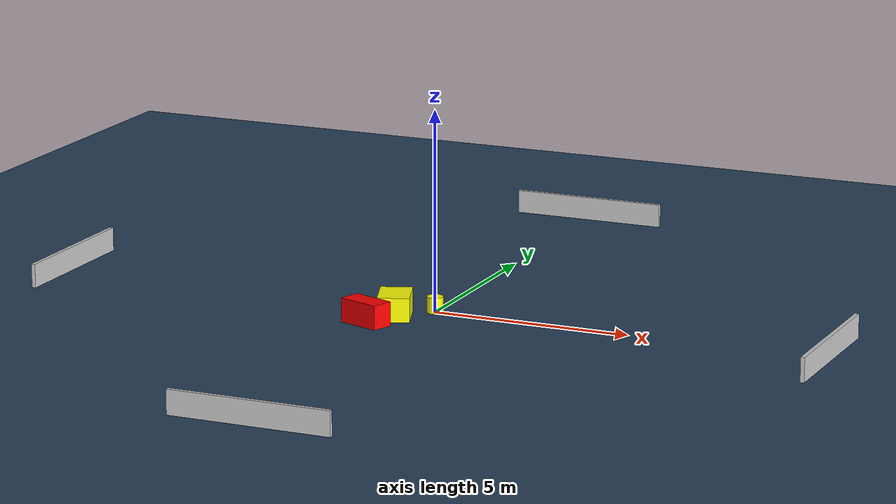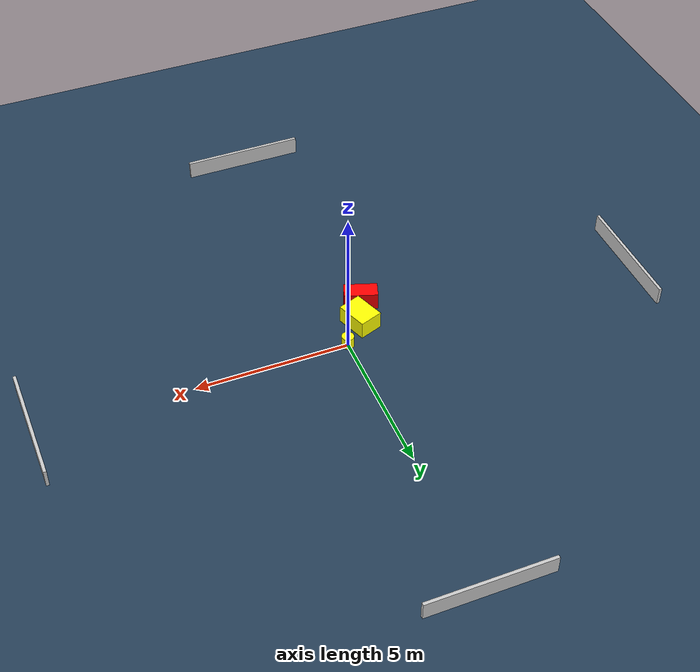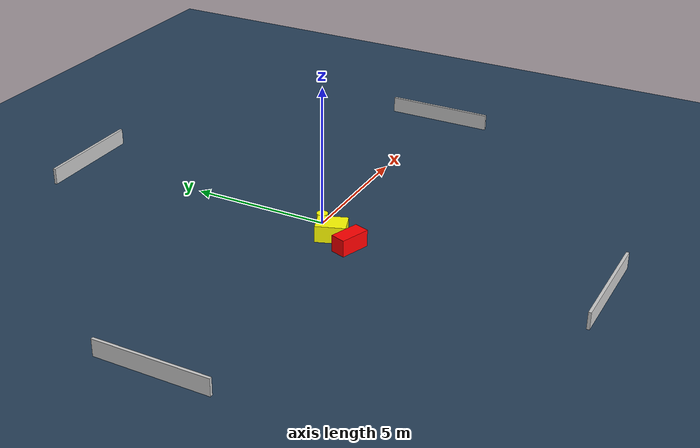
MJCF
<?xml version="1.0" ?>
<mujoco model="generated_environment">
  <option timestep="0.01" integrator="RK4" cone="elliptic"/>
  <default>
    <geom density="1"/>
  </default>
  <asset>
    <texture builtin="gradient" height="3072" name="skybox" rgb1="0.3 0.5 0.7" rgb2="0 0 0" type="skybox" width="512"/>
    <texture builtin="checker" height="300" name="groundplane" rgb1="0.2 0.3 0.4" rgb2="0.1 0.2 0.3" type="2d" width="300"/>
    <material name="groundplane" reflectance="0.2" texrepeat="5 5" texture="groundplane"/>
  </asset>
  <worldbody>
    <light dir="0 0 -1" directional="true" pos="0 0 1.5"/>
    <geom condim="3" friction="0.5 0.005 0.001" material="groundplane" name="floor" pos="0 0 0" size="0 0 0.05" type="plane"/>
    <body name="walls">
      <geom name="wall_1" condim="4" pos="-10.0 0.0 0.3" rgba="0.800000011920929 0.800000011920929 0.800000011920929 1.0" size="0.05 2.0 0.3" type="box"/>
      <geom name="wall_2" condim="4" pos="10.0 0.0 0.3" rgba="0.800000011920929 0.800000011920929 0.800000011920929 1.0" size="0.05 2.0 0.3" type="box"/>
      <geom name="wall_3" condim="4" pos="0.0 -10.0 0.3" rgba="0.800000011920929 0.800000011920929 0.800000011920929 1.0" size="2.0 0.05 0.3" type="box"/>
      <geom name="wall_4" condim="4" pos="0.0 10.0 0.3" rgba="0.800000011920929 0.800000011920929 0.800000011920929 1.0" size="2.0 0.05 0.3" type="box"/>
    </body>
    <body name="robot">
      <joint name="joint_x" type="slide" pos="0 0 0" axis="1 0 0"/>
      <joint name="joint_y" type="slide" pos="0 0 0" axis="0 1 0"/>
      <geom name="robot" type="cylinder" pos="0.0 0.0 0.2" size="0.2 0.2 0.0" mass="5.0" friction="1.0 0.005 0.0001" condim="4" rgba="1.0 1.0 0.0 1.0"/>
    </body>
    <body name="obstacle_1_movable">
      <geom name="obstacle_1_movable" condim="4" pos="-0.7269305028366096 -0.7494457559115907 0.3" euler="0 0 109.77811840300932" friction="0.0 0.005 0.001" rgba="1.0 1.0 0.0 1.0" size="0.525973640908133 0.3925827001149728 0.3" type="box" mass="0.1"/>
      <joint type="free"/>
    </body>
    <body name="obstacle_2_static">
      <geom name="obstacle_2_static" condim="4" pos="-1.096218703320629 -1.6161559579197355 0.3" euler="0 0 70.92259068423112" friction="0.0 0.005 0.001" rgba="1.0 0.0 0.0 1.0" size="0.2730669576288437 0.5484901587866091 0.3" type="box"/>
    </body>
  </worldbody>
  <actuator>
    <motor name="actuator_x" joint="joint_x" gear="1" ctrlrange="-1 1"/>
    <motor name="actuator_y" joint="joint_y" gear="1" ctrlrange="-1 1"/>
  </actuator>
</mujoco>
